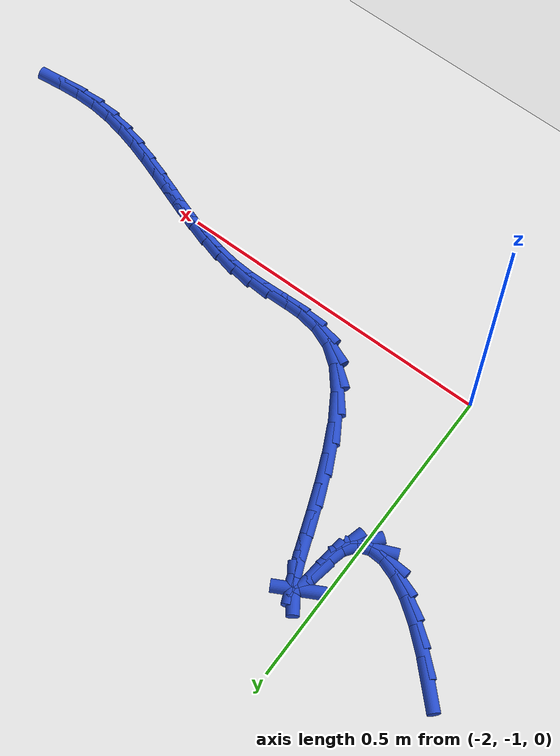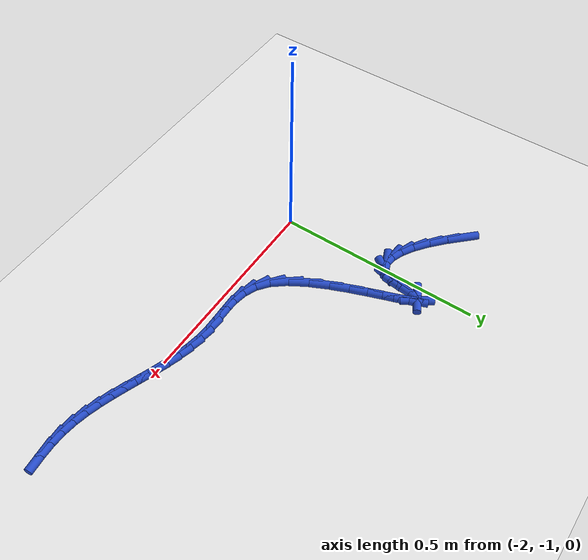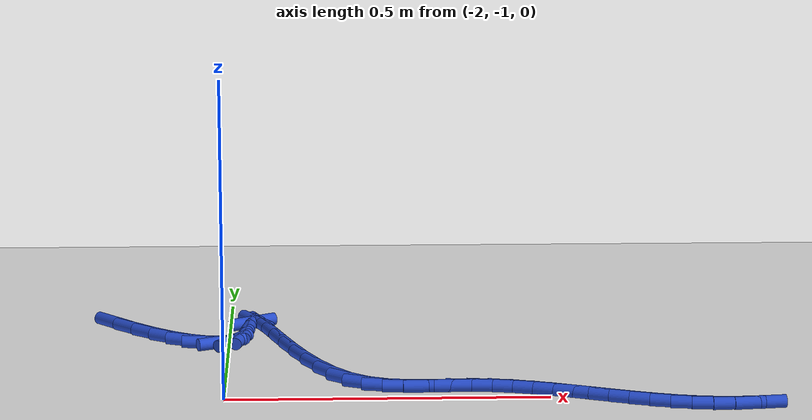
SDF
<sdf version="1.6">
 <world name="default">
  <model name="ground_plane">
   <static>1</static>
   <link name="link">
    <collision name="collision">
     <geometry><plane><normal>0 0 1</normal><size>100 100</size></plane></geometry>
     <surface><friction><ode><mu>100</mu><mu2>50</mu2></ode></friction></surface>
    </collision>
    <visual name="visual">
     <cast_shadows>0</cast_shadows>
     <geometry><plane><normal>0 0 1</normal><size>100 100</size></plane></geometry>
     <material>
      <script><uri>file://media/materials/scripts/gazebo.material</uri><name>Gazebo/WhiteGlow</name></script>
     </material>
    </visual>
   </link>
  </model>
  <model name="line">
   <link name="link_145">
    <pose>-2.1891351397501344 -0.6184581842405164 0.01 0 1.57 -0.7866532290639667</pose>
    <collision name="collision">
     <geometry><cylinder><radius>0.01</radius><length>0.08</length></cylinder></geometry>
    </collision>
    <visual name="visual">
     <material>
      <script><name>Gazebo/Blue</name><uri>file://media/materials/scripts/gazebo.material</uri></script>
     </material>
     <geometry><cylinder><radius>0.01</radius><length>0.08</length></cylinder></geometry>
    </visual>
   </link>
   <link name="link_146">
    <pose>-2.156391964179898 -0.6512836528080194 0.01 0 1.57 -0.7216025363986304</pose>
    <collision name="collision">
     <geometry><cylinder><radius>0.01</radius><length>0.08</length></cylinder></geometry>
    </collision>
    <visual name="visual">
     <material>
      <script><name>Gazebo/Blue</name><uri>file://media/materials/scripts/gazebo.material</uri></script>
     </material>
     <geometry><cylinder><radius>0.01</radius><length>0.08</length></cylinder></geometry>
    </visual>
   </link>
   <link name="link_147">
    <pose>-2.1238239556565435 -0.6799404772640939 0.01 0 1.57 -0.6389915004822423</pose>
    <collision name="collision">
     <geometry><cylinder><radius>0.01</radius><length>0.08</length></cylinder></geometry>
    </collision>
    <visual name="visual">
     <material>
      <script><name>Gazebo/Blue</name><uri>file://media/materials/scripts/gazebo.material</uri></script>
     </material>
     <geometry><cylinder><radius>0.01</radius><length>0.08</length></cylinder></geometry>
    </visual>
   </link>
   <link name="link_148">
    <pose>-2.092281916333496 -0.7033755009290263 0.01 0 1.57 -0.5244280288787255</pose>
    <collision name="collision">
     <geometry><cylinder><radius>0.01</radius><length>0.08</length></cylinder></geometry>
    </collision>
    <visual name="visual">
     <material>
      <script><name>Gazebo/Blue</name><uri>file://media/materials/scripts/gazebo.material</uri></script>
     </material>
     <geometry><cylinder><radius>0.01</radius><length>0.08</length></cylinder></geometry>
    </visual>
   </link>
   <link name="link_149">
    <pose>-2.0626166483641772 -0.7205355671231033 0.01 0 1.57 -0.34996481694937626</pose>
    <collision name="collision">
     <geometry><cylinder><radius>0.01</radius><length>0.08</length></cylinder></geometry>
    </collision>
    <visual name="visual">
     <material>
      <script><name>Gazebo/Blue</name><uri>file://media/materials/scripts/gazebo.material</uri></script>
     </material>
     <geometry><cylinder><radius>0.01</radius><length>0.08</length></cylinder></geometry>
    </visual>
   </link>
   <link name="link_150">
    <pose>-2.0356789539020093 -0.7303675191666108 0.01 0 1.57 -0.06202323571962348</pose>
    <collision name="collision">
     <geometry><cylinder><radius>0.01</radius><length>0.08</length></cylinder></geometry>
    </collision>
    <visual name="visual">
     <material>
      <script><name>Gazebo/Blue</name><uri>file://media/materials/scripts/gazebo.material</uri></script>
     </material>
     <geometry><cylinder><radius>0.01</radius><length>0.08</length></cylinder></geometry>
    </visual>
   </link>
   <link name="link_151">
    <pose>-2.012319635100416 -0.7318182003798352 0.01 0 1.57 0.3991128270822155</pose>
    <collision name="collision">
     <geometry><cylinder><radius>0.01</radius><length>0.08</length></cylinder></geometry>
    </collision>
    <visual name="visual">
     <material>
      <script><name>Gazebo/Blue</name><uri>file://media/materials/scripts/gazebo.material</uri></script>
     </material>
     <geometry><cylinder><radius>0.01</radius><length>0.08</length></cylinder></geometry>
    </visual>
   </link>
   <link name="link_152">
    <pose>-1.9933894941128192 -0.7238344540830629 0.01 0 1.57 0.9343777980269163</pose>
    <collision name="collision">
     <geometry><cylinder><radius>0.01</radius><length>0.08</length></cylinder></geometry>
    </collision>
    <visual name="visual">
     <material>
      <script><name>Gazebo/Blue</name><uri>file://media/materials/scripts/gazebo.material</uri></script>
     </material>
     <geometry><cylinder><radius>0.01</radius><length>0.08</length></cylinder></geometry>
    </visual>
   </link>
   <link name="link_153">
    <pose>-1.9797393330926418 -0.70536312359658 0.01 0 1.57 1.3192364866332018</pose>
    <collision name="collision">
     <geometry><cylinder><radius>0.01</radius><length>0.08</length></cylinder></geometry>
    </collision>
    <visual name="visual">
     <material>
      <script><name>Gazebo/Blue</name><uri>file://media/materials/scripts/gazebo.material</uri></script>
     </material>
     <geometry><cylinder><radius>0.01</radius><length>0.08</length></cylinder></geometry>
    </visual>
   </link>
   <link name="link_154">
    <pose>-1.9721143708378142 -0.6756944860290891 0.01 0 1.57 1.4663135922272887</pose>
    <collision name="collision">
     <geometry><cylinder><radius>0.01</radius><length>0.08</length></cylinder></geometry>
    </collision>
    <visual name="visual">
     <material>
      <script><name>Gazebo/Blue</name><uri>file://media/materials/scripts/gazebo.material</uri></script>
     </material>
     <geometry><cylinder><radius>0.01</radius><length>0.08</length></cylinder></geometry>
    </visual>
   </link>
   <link name="link_155">
    <pose>-1.968646089722363 -0.6426205884680818 0.01 0 1.57 1.3935581664831147</pose>
    <collision name="collision">
     <geometry><cylinder><radius>0.01</radius><length>0.08</length></cylinder></geometry>
    </collision>
    <visual name="visual">
     <material>
      <script><name>Gazebo/Blue</name><uri>file://media/materials/scripts/gazebo.material</uri></script>
     </material>
     <geometry><cylinder><radius>0.01</radius><length>0.08</length></cylinder></geometry>
    </visual>
   </link>
   <link name="link_156">
    <pose>-1.9649433004582613 -0.6219482035906958 0.01 0 1.57 0.4868107207985944</pose>
    <collision name="collision">
     <geometry><cylinder><radius>0.01</radius><length>0.08</length></cylinder></geometry>
    </collision>
    <visual name="visual">
     <material>
      <script><name>Gazebo/Blue</name><uri>file://media/materials/scripts/gazebo.material</uri></script>
     </material>
     <geometry><cylinder><radius>0.01</radius><length>0.08</length></cylinder></geometry>
    </visual>
   </link>
   <link name="link_157">
    <pose>-1.959106748294558 -0.6188589255688287 0.01 0 1.57 -0.9768055903165728</pose>
    <collision name="collision">
     <geometry><cylinder><radius>0.01</radius><length>0.08</length></cylinder></geometry>
    </collision>
    <visual name="visual">
     <material>
      <script><name>Gazebo/Blue</name><uri>file://media/materials/scripts/gazebo.material</uri></script>
     </material>
     <geometry><cylinder><radius>0.01</radius><length>0.08</length></cylinder></geometry>
    </visual>
   </link>
   <link name="link_158">
    <pose>-1.9510884283275647 -0.6307317448744796 0.01 0 1.57 -1.1693469329995652</pose>
    <collision name="collision">
     <geometry><cylinder><radius>0.01</radius><length>0.08</length></cylinder></geometry>
    </collision>
    <visual name="visual">
     <material>
      <script><name>Gazebo/Blue</name><uri>file://media/materials/scripts/gazebo.material</uri></script>
     </material>
     <geometry><cylinder><radius>0.01</radius><length>0.08</length></cylinder></geometry>
    </visual>
   </link>
   <link name="link_159">
    <pose>-1.9408793346595814 -0.6547812798994206 0.01 0 1.57 -1.2154763694745399</pose>
    <collision name="collision">
     <geometry><cylinder><radius>0.01</radius><length>0.08</length></cylinder></geometry>
    </collision>
    <visual name="visual">
     <material>
      <script><name>Gazebo/Blue</name><uri>file://media/materials/scripts/gazebo.material</uri></script>
     </material>
     <geometry><cylinder><radius>0.01</radius><length>0.08</length></cylinder></geometry>
    </visual>
   </link>
   <link name="link_160">
    <pose>-1.9284704613929082 -0.6882221490354239 0.01 0 1.57 -1.2208089365054435</pose>
    <collision name="collision">
     <geometry><cylinder><radius>0.01</radius><length>0.08</length></cylinder></geometry>
    </collision>
    <visual name="visual">
     <material>
      <script><name>Gazebo/Blue</name><uri>file://media/materials/scripts/gazebo.material</uri></script>
     </material>
     <geometry><cylinder><radius>0.01</radius><length>0.08</length></cylinder></geometry>
    </visual>
   </link>
   <link name="link_161">
    <pose>-1.9138528026298451 -0.7282689706742614 0.01 0 1.57 -1.2043499864451432</pose>
    <collision name="collision">
     <geometry><cylinder><radius>0.01</radius><length>0.08</length></cylinder></geometry>
    </collision>
    <visual name="visual">
     <material>
      <script><name>Gazebo/Blue</name><uri>file://media/materials/scripts/gazebo.material</uri></script>
     </material>
     <geometry><cylinder><radius>0.01</radius><length>0.08</length></cylinder></geometry>
    </visual>
   </link>
   <link name="link_162">
    <pose>-1.8970173524726928 -0.7721363632077057 0.01 0 1.57 -1.16932847552887</pose>
    <collision name="collision">
     <geometry><cylinder><radius>0.01</radius><length>0.08</length></cylinder></geometry>
    </collision>
    <visual name="visual">
     <material>
      <script><name>Gazebo/Blue</name><uri>file://media/materials/scripts/gazebo.material</uri></script>
     </material>
     <geometry><cylinder><radius>0.01</radius><length>0.08</length></cylinder></geometry>
    </visual>
   </link>
   <link name="link_163">
    <pose>-1.87795510502375 -0.8170389450275283 0.01 0 1.57 -1.112318500662098</pose>
    <collision name="collision">
     <geometry><cylinder><radius>0.01</radius><length>0.08</length></cylinder></geometry>
    </collision>
    <visual name="visual">
     <material>
      <script><name>Gazebo/Blue</name><uri>file://media/materials/scripts/gazebo.material</uri></script>
     </material>
     <geometry><cylinder><radius>0.01</radius><length>0.08</length></cylinder></geometry>
    </visual>
   </link>
   <link name="link_164">
    <pose>-1.856657054385318 -0.8601913345255017 0.01 0 1.57 -1.0233092063672387</pose>
    <collision name="collision">
     <geometry><cylinder><radius>0.01</radius><length>0.08</length></cylinder></geometry>
    </collision>
    <visual name="visual">
     <material>
      <script><name>Gazebo/Blue</name><uri>file://media/materials/scripts/gazebo.material</uri></script>
     </material>
     <geometry><cylinder><radius>0.01</radius><length>0.08</length></cylinder></geometry>
    </visual>
   </link>
   <link name="link_165">
    <pose>-1.833114194659696 -0.8988081500933978 0.01 0 1.57 -0.8814225014461837</pose>
    <collision name="collision">
     <geometry><cylinder><radius>0.01</radius><length>0.08</length></cylinder></geometry>
    </collision>
    <visual name="visual">
     <material>
      <script><name>Gazebo/Blue</name><uri>file://media/materials/scripts/gazebo.material</uri></script>
     </material>
     <geometry><cylinder><radius>0.01</radius><length>0.08</length></cylinder></geometry>
    </visual>
   </link>
   <link name="link_166">
    <pose>-1.8073175199491847 -0.9301040101229888 0.01 0 1.57 -0.6533944606980346</pose>
    <collision name="collision">
     <geometry><cylinder><radius>0.01</radius><length>0.08</length></cylinder></geometry>
    </collision>
    <visual name="visual">
     <material>
      <script><name>Gazebo/Blue</name><uri>file://media/materials/scripts/gazebo.material</uri></script>
     </material>
     <geometry><cylinder><radius>0.01</radius><length>0.08</length></cylinder></geometry>
    </visual>
   </link>
   <link name="link_167">
    <pose>-1.7792844070189242 -0.9515654446597377 0.01 0 1.57 -0.3855259770459697</pose>
    <collision name="collision">
     <geometry><cylinder><radius>0.01</radius><length>0.08</length></cylinder></geometry>
    </collision>
    <visual name="visual">
     <material>
      <script><name>Gazebo/Blue</name><uri>file://media/materials/scripts/gazebo.material</uri></script>
     </material>
     <geometry><cylinder><radius>0.01</radius><length>0.08</length></cylinder></geometry>
    </visual>
   </link>
   <link name="link_168">
    <pose>-1.7493275791881777 -0.9637229588940537 0.01 0 1.57 -0.16711267734131446</pose>
    <collision name="collision">
     <geometry><cylinder><radius>0.01</radius><length>0.08</length></cylinder></geometry>
    </collision>
    <visual name="visual">
     <material>
      <script><name>Gazebo/Blue</name><uri>file://media/materials/scripts/gazebo.material</uri></script>
     </material>
     <geometry><cylinder><radius>0.01</radius><length>0.08</length></cylinder></geometry>
    </visual>
   </link>
   <link name="link_169">
    <pose>-1.7179450505511318 -0.9690167485327241 0.01 0 1.57 -0.02784223905678554</pose>
    <collision name="collision">
     <geometry><cylinder><radius>0.01</radius><length>0.08</length></cylinder></geometry>
    </collision>
    <visual name="visual">
     <material>
      <script><name>Gazebo/Blue</name><uri>file://media/materials/scripts/gazebo.material</uri></script>
     </material>
     <geometry><cylinder><radius>0.01</radius><length>0.08</length></cylinder></geometry>
    </visual>
   </link>
   <link name="link_170">
    <pose>-1.6856376956287191 -0.9699164901340955 0.01 0 1.57 0.031294056972638915</pose>
    <collision name="collision">
     <geometry><cylinder><radius>0.01</radius><length>0.08</length></cylinder></geometry>
    </collision>
    <visual name="visual">
     <material>
      <script><name>Gazebo/Blue</name><uri>file://media/materials/scripts/gazebo.material</uri></script>
     </material>
     <geometry><cylinder><radius>0.01</radius><length>0.08</length></cylinder></geometry>
    </visual>
   </link>
   <link name="link_171">
    <pose>-1.652906388941873 -0.9688918602565142 0.01 0 1.57 0.01467767322599943</pose>
    <collision name="collision">
     <geometry><cylinder><radius>0.01</radius><length>0.08</length></cylinder></geometry>
    </collision>
    <visual name="visual">
     <material>
      <script><name>Gazebo/Blue</name><uri>file://media/materials/scripts/gazebo.material</uri></script>
     </material>
     <geometry><cylinder><radius>0.01</radius><length>0.08</length></cylinder></geometry>
    </visual>
   </link>
   <link name="link_172">
    <pose>-1.620252005011525 -0.9684125354583264 0.01 0 1.57 -0.06902854699813084</pose>
    <collision name="collision">
     <geometry><cylinder><radius>0.01</radius><length>0.08</length></cylinder></geometry>
    </collision>
    <visual name="visual">
     <material>
      <script><name>Gazebo/Blue</name><uri>file://media/materials/scripts/gazebo.material</uri></script>
     </material>
     <geometry><cylinder><radius>0.01</radius><length>0.08</length></cylinder></geometry>
    </visual>
   </link>
   <link name="link_173">
    <pose>-1.5881131439555785 -0.9706345647397799 0.01 0 1.57 -0.16088624382352343</pose>
    <collision name="collision">
     <geometry><cylinder><radius>0.01</radius><length>0.08</length></cylinder></geometry>
    </collision>
    <visual name="visual">
     <material>
      <script><name>Gazebo/Blue</name><uri>file://media/materials/scripts/gazebo.material</uri></script>
     </material>
     <geometry><cylinder><radius>0.01</radius><length>0.08</length></cylinder></geometry>
    </visual>
   </link>
   <link name="link_174">
    <pose>-1.556540122387131 -0.9757585161726275 0.01 0 1.57 -0.23580662144418807</pose>
    <collision name="collision">
     <geometry><cylinder><radius>0.01</radius><length>0.08</length></cylinder></geometry>
    </collision>
    <visual name="visual">
     <material>
      <script><name>Gazebo/Blue</name><uri>file://media/materials/scripts/gazebo.material</uri></script>
     </material>
     <geometry><cylinder><radius>0.01</radius><length>0.08</length></cylinder></geometry>
    </visual>
   </link>
   <link name="link_175">
    <pose>-1.5254338723142995 -0.9832326241795185 0.01 0 1.57 -0.2929265981922802</pose>
    <collision name="collision">
     <geometry><cylinder><radius>0.01</radius><length>0.08</length></cylinder></geometry>
    </collision>
    <visual name="visual">
     <material>
      <script><name>Gazebo/Blue</name><uri>file://media/materials/scripts/gazebo.material</uri></script>
     </material>
     <geometry><cylinder><radius>0.01</radius><length>0.08</length></cylinder></geometry>
    </visual>
   </link>
   <link name="link_176">
    <pose>-1.4946950133562527 -0.9925035499238127 0.01 0 1.57 -0.3322710904689916</pose>
    <collision name="collision">
     <geometry><cylinder><radius>0.01</radius><length>0.08</length></cylinder></geometry>
    </collision>
    <visual name="visual">
     <material>
      <script><name>Gazebo/Blue</name><uri>file://media/materials/scripts/gazebo.material</uri></script>
     </material>
     <geometry><cylinder><radius>0.01</radius><length>0.08</length></cylinder></geometry>
    </visual>
   </link>
   <link name="link_177">
    <pose>-1.4642241651321564 -1.00301795456887 0.01 0 1.57 -0.3541687044166897</pose>
    <collision name="collision">
     <geometry><cylinder><radius>0.01</radius><length>0.08</length></cylinder></geometry>
    </collision>
    <visual name="visual">
     <material>
      <script><name>Gazebo/Blue</name><uri>file://media/materials/scripts/gazebo.material</uri></script>
     </material>
     <geometry><cylinder><radius>0.01</radius><length>0.08</length></cylinder></geometry>
    </visual>
   </link>
   <link name="link_178">
    <pose>-1.4339219472611793 -1.0142224992780506 0.01 0 1.57 -0.3588861657701613</pose>
    <collision name="collision">
     <geometry><cylinder><radius>0.01</radius><length>0.08</length></cylinder></geometry>
    </collision>
    <visual name="visual">
     <material>
      <script><name>Gazebo/Blue</name><uri>file://media/materials/scripts/gazebo.material</uri></script>
     </material>
     <geometry><cylinder><radius>0.01</radius><length>0.08</length></cylinder></geometry>
    </visual>
   </link>
   <link name="link_179">
    <pose>-1.4036889793624887 -1.0255638452147144 0.01 0 1.57 -0.34643559296166737</pose>
    <collision name="collision">
     <geometry><cylinder><radius>0.01</radius><length>0.08</length></cylinder></geometry>
    </collision>
    <visual name="visual">
     <material>
      <script><name>Gazebo/Blue</name><uri>file://media/materials/scripts/gazebo.material</uri></script>
     </material>
     <geometry><cylinder><radius>0.01</radius><length>0.08</length></cylinder></geometry>
    </visual>
   </link>
   <link name="link_180">
    <pose>-1.373425881055253 -1.0364886535422213 0.01 0 1.57 -0.3165315861447174</pose>
    <collision name="collision">
     <geometry><cylinder><radius>0.01</radius><length>0.08</length></cylinder></geometry>
    </collision>
    <visual name="visual">
     <material>
      <script><name>Gazebo/Blue</name><uri>file://media/materials/scripts/gazebo.material</uri></script>
     </material>
     <geometry><cylinder><radius>0.01</radius><length>0.08</length></cylinder></geometry>
    </visual>
   </link>
   <link name="link_181">
    <pose>-1.34303327195864 -1.0464435854239311 0.01 0 1.57 -0.26869419975190656</pose>
    <collision name="collision">
     <geometry><cylinder><radius>0.01</radius><length>0.08</length></cylinder></geometry>
    </collision>
    <visual name="visual">
     <material>
      <script><name>Gazebo/Blue</name><uri>file://media/materials/scripts/gazebo.material</uri></script>
     </material>
     <geometry><cylinder><radius>0.01</radius><length>0.08</length></cylinder></geometry>
    </visual>
   </link>
   <link name="link_182">
    <pose>-1.3124117716918176 -1.0548753020232042 0.01 0 1.57 -0.2025228889898962</pose>
    <collision name="collision">
     <geometry><cylinder><radius>0.01</radius><length>0.08</length></cylinder></geometry>
    </collision>
    <visual name="visual">
     <material>
      <script><name>Gazebo/Blue</name><uri>file://media/materials/scripts/gazebo.material</uri></script>
     </material>
     <geometry><cylinder><radius>0.01</radius><length>0.08</length></cylinder></geometry>
    </visual>
   </link>
   <link name="link_183">
    <pose>-1.2814619998739527 -1.0612304645033996 0.01 0 1.57 -0.11817136157556034</pose>
    <collision name="collision">
     <geometry><cylinder><radius>0.01</radius><length>0.08</length></cylinder></geometry>
    </collision>
    <visual name="visual">
     <material>
      <script><name>Gazebo/Blue</name><uri>file://media/materials/scripts/gazebo.material</uri></script>
     </material>
     <geometry><cylinder><radius>0.01</radius><length>0.08</length></cylinder></geometry>
    </visual>
   </link>
   <link name="link_184">
    <pose>-1.2500845761242139 -1.064955734027878 0.01 0 1.57 -0.018401347420710007</pose>
    <collision name="collision">
     <geometry><cylinder><radius>0.01</radius><length>0.08</length></cylinder></geometry>
    </collision>
    <visual name="visual">
     <material>
      <script><name>Gazebo/Blue</name><uri>file://media/materials/scripts/gazebo.material</uri></script>
     </material>
     <geometry><cylinder><radius>0.01</radius><length>0.08</length></cylinder></geometry>
    </visual>
   </link>
   <link name="link_185">
    <pose>-1.2181898594995504 -1.0655427060423195 0.01 0 1.57 0.06653177755623003</pose>
    <collision name="collision">
     <geometry><cylinder><radius>0.01</radius><length>0.08</length></cylinder></geometry>
    </collision>
    <visual name="visual">
     <material>
      <script><name>Gazebo/Blue</name><uri>file://media/materials/scripts/gazebo.material</uri></script>
     </material>
     <geometry><cylinder><radius>0.01</radius><length>0.08</length></cylinder></geometry>
    </visual>
   </link>
   <link name="link_186">
    <pose>-1.185884852738426 -1.0633902196033713 0.01 0 1.57 0.11212059710664174</pose>
    <collision name="collision">
     <geometry><cylinder><radius>0.01</radius><length>0.08</length></cylinder></geometry>
    </collision>
    <visual name="visual">
     <material>
      <script><name>Gazebo/Blue</name><uri>file://media/materials/scripts/gazebo.material</uri></script>
     </material>
     <geometry><cylinder><radius>0.01</radius><length>0.08</length></cylinder></geometry>
    </visual>
   </link>
  </model>
 </world>
</sdf>
